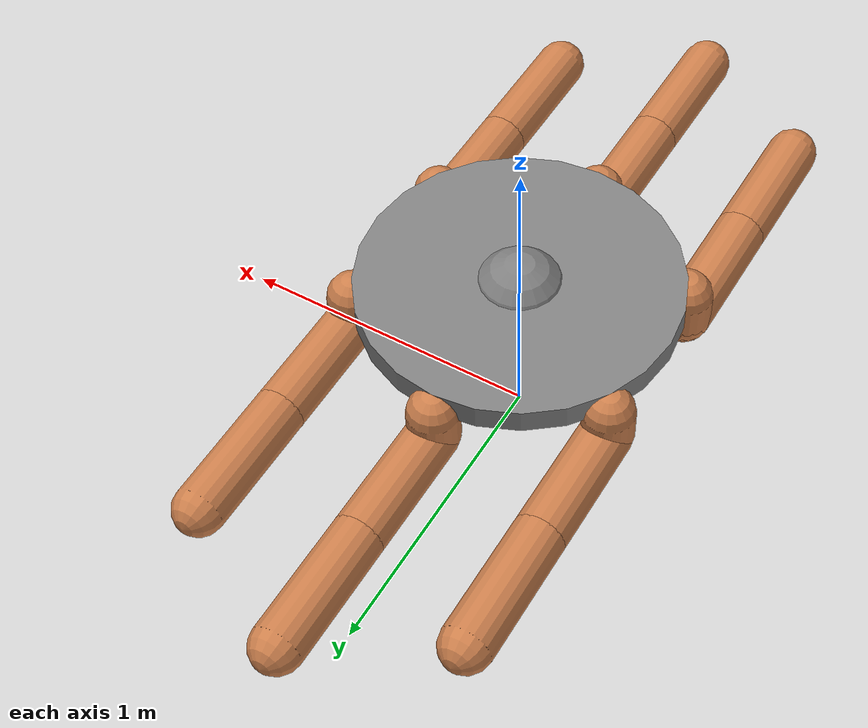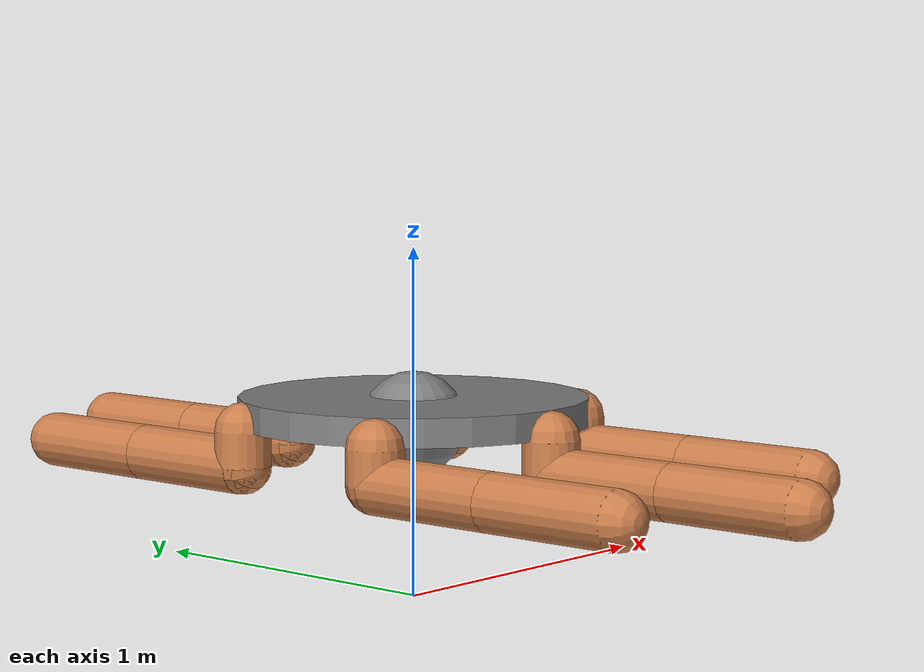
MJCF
<mujoco model="ant">
  <compiler angle="degree" coordinate="local" inertiafromgeom="true"/>
  <worldbody>
    <body name="torso" pos="0 0 .5">
      <!--geom name="torso_geom" pos="0 0 0" size="0.15" type="sphere"/-->
      <geom name="torso_geom" fromto="0 0 0 0 0 0.08" size="0.5" type="cylinder"/>
      <geom name="torso_geom" pos="0 0 0" size="0.15" type="sphere"/>
      <joint armature="0" damping="0" limited="false" margin="0.01" name="root" pos="0 0 0" type="free"/>

      <body name="front_left_leg" pos="0.433 0.25 0.0">
	<joint axis="0 0 1" name="hip_0" pos="0.0 0.0 0.0" type="hinge"/>
	<geom fromto="0.0 0.0 0.0 0.0 0.0 -0.1" name="front_left_leg_geom" size="0.08" type="capsule" rgba=".8 .5 .3 1"/>
	<body pos="0 0 -0.1" name="front_left_thigh">
	  <joint axis="1 0 0" name="knee_0" pos="0.0 0.0 0.0" type="hinge"/>
	  <geom fromto="0.0 0.0 0.0 0.0 0.4 0.0" name="front_left_thigh_geom" size="0.08" type="capsule" rgba=".8 .5 .3 1"/>
	  <body pos="0 0.4 0" name="front_left_foot">
	    <joint axis="1 0 0" name="ankle_0" pos="0.0 0.0 0.0" type="hinge"/>
	    <geom fromto="0.0 0.0 0.0 0 0.4 0.0" name="front_left_foot_geom" size="0.08" type="capsule" rgba=".8 .5 .3 1"/>
	  </body>
	</body>
      </body>

      <body name="front_right_leg" pos="0.433 -0.25 0.0">
	<joint axis="0 0 1" name="hip_1" pos="0.0 0.0 0.0" type="hinge"/>
	<geom fromto="0.0 0.0 0.0 0.0 0.0 -0.1" name="front_right_leg_geom" size="0.08" type="capsule" rgba=".8 .5 .3 1"/>
	<body pos="0 0 -0.1" name="front_right_thigh">
	  <joint axis="1 0 0" name="knee_1" pos="0.0 0.0 0.0" type="hinge"/>
	  <geom fromto="0.0 0.0 0.0 0.0 -0.4 0.0" name="front_right_thigh_geom" size="0.08" type="capsule" rgba=".8 .5 .3 1"/>
	  <body pos="0 -0.4 0" name="front_right_foot">
	    <joint axis="1 0 0" name="ankle_1" pos="0.0 0.0 0.0" type="hinge"/>
	    <geom fromto="0.0 0.0 0.0 0 -0.4 0.0" name="front_right_foot_geom" size="0.08" type="capsule" rgba=".8 .5 .3 1"/>
	  </body>
	</body>
      </body>

      <body name="mid_left_leg" pos="0.0 0.5 0.0">
	<joint axis="0 0 1" name="hip_2" pos="0.0 0.0 0.0" type="hinge"/>
	<geom fromto="0.0 0.0 0.0 0.0 0.0 -0.1" name="mid_left_leg_geom" size="0.08" type="capsule" rgba=".8 .5 .3 1"/>
	<body pos="0 0 -0.1" name="mid_left_thigh">
	  <joint axis="1 0 0" name="knee_2" pos="0.0 0.0 0.0" type="hinge"/>
	  <geom fromto="0.0 0.0 0.0 0.0 0.4 0.0" name="mid_left_thigh_geom" size="0.08" type="capsule" rgba=".8 .5 .3 1"/>
	  <body pos="0 0.4 0" name="mid_left_foot">
	    <joint axis="1 0 0" name="ankle_2" pos="0.0 0.0 0.0" type="hinge"/>
	    <geom fromto="0.0 0.0 0.0 0 0.4 0.0" name="mid_left_foot_geom" size="0.08" type="capsule" rgba=".8 .5 .3 1"/>
	  </body>
	</body>
      </body>

      <body name="mid_right_leg" pos="0.0 -0.5 0.0">
	<joint axis="0 0 1" name="hip_3" pos="0.0 0.0 0.0" type="hinge"/>
	<geom fromto="0.0 0.0 0.0 0.0 0.0 -0.1" name="mid_right_leg_geom" size="0.08" type="capsule" rgba=".8 .5 .3 1"/>
	<body pos="0 0 -0.1" name="mid_right_thigh">
	  <joint axis="1 0 0" name="knee_3" pos="0.0 0.0 0.0" type="hinge"/>
	  <geom fromto="0.0 0.0 0.0 0.0 -0.4 0.0" name="mid_right_thigh_geom" size="0.08" type="capsule" rgba=".8 .5 .3 1"/>
	  <body pos="0 -0.4 0" name="mid_right_foot">
	    <joint axis="1 0 0" name="ankle_3" pos="0.0 0.0 0.0" type="hinge"/>
	    <geom fromto="0.0 0.0 0.0 0 -0.4 0.0" name="mid_right_foot_geom" size="0.08" type="capsule" rgba=".8 .5 .3 1"/>
	  </body>
	</body>
      </body>

      <body name="back_left_leg" pos="-0.433 0.25 0.0">
	<joint axis="0 0 1" name="hip_4" pos="0.0 0.0 0.0" type="hinge"/>
	<geom fromto="0.0 0.0 0.0 0.0 0.0 -0.1" name="back_left_leg_geom" size="0.08" type="capsule" rgba=".8 .5 .3 1"/>
	<body pos="0 0 -0.1" name="back_left_thigh">
	  <joint axis="1 0 0" name="knee_4" pos="0.0 0.0 0.0" type="hinge"/>
	  <geom fromto="0.0 0.0 0.0 0.0 0.4 0.0" name="back_left_thigh_geom" size="0.08" type="capsule" rgba=".8 .5 .3 1"/>
	  <body pos="0 0.4 0" name="back_left_foot">
	    <joint axis="1 0 0" name="ankle_4" pos="0.0 0.0 0.0" type="hinge"/>
	    <geom fromto="0.0 0.0 0.0 0 0.4 0.0" name="back_left_foot_geom" size="0.08" type="capsule" rgba=".8 .5 .3 1"/>
	  </body>
	</body>
      </body>

      <body name="back_right_leg" pos="-0.433 -0.25 0.0">
	<joint axis="0 0 1" name="hip_5" pos="0.0 0.0 0.0" type="hinge"/>
	<geom fromto="0.0 0.0 0.0 0.0 0.0 -0.1" name="back_right_leg_geom" size="0.08" type="capsule" rgba=".8 .5 .3 1"/>
	<body pos="0 0 -0.1" name="back_right_thigh">
	  <joint axis="1 0 0" name="knee_5" pos="0.0 0.0 0.0" type="hinge"/>
	  <geom fromto="0.0 0.0 0.0 0.0 -0.4 0.0" name="back_right_thigh_geom" size="0.08" type="capsule" rgba=".8 .5 .3 1"/>
	  <body pos="0 -0.4 0" name="back_right_foot">
	    <joint axis="1 0 0" name="ankle_5" pos="0.0 0.0 0.0" type="hinge"/>
	    <geom fromto="0.0 0.0 0.0 0 -0.4 0.0" name="back_right_foot_geom" size="0.08" type="capsule" rgba=".8 .5 .3 1"/>
	  </body>
	</body>
      </body>

    </body>
  </worldbody>
  <actuator>
  </actuator>
</mujoco>
